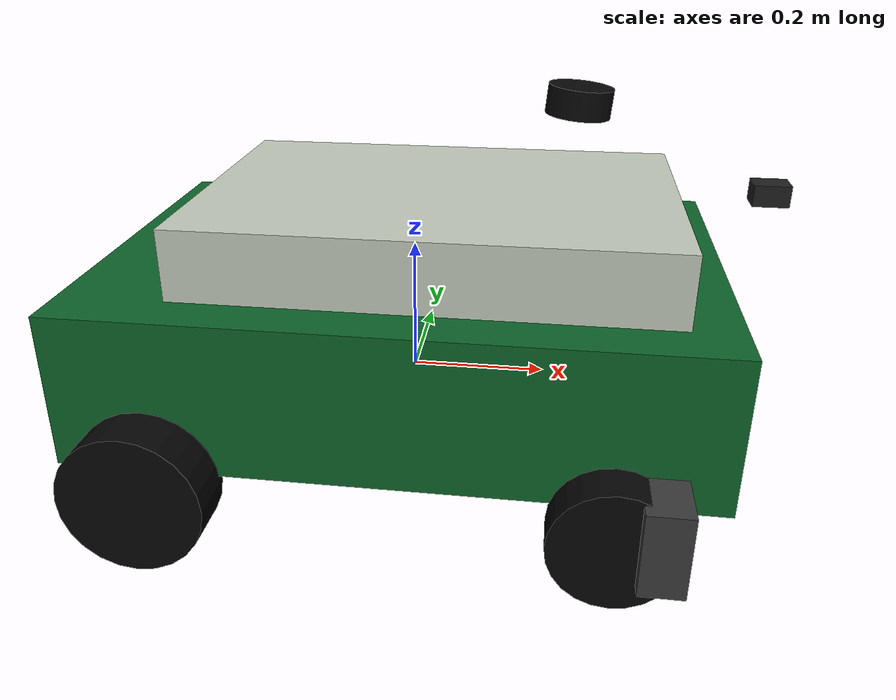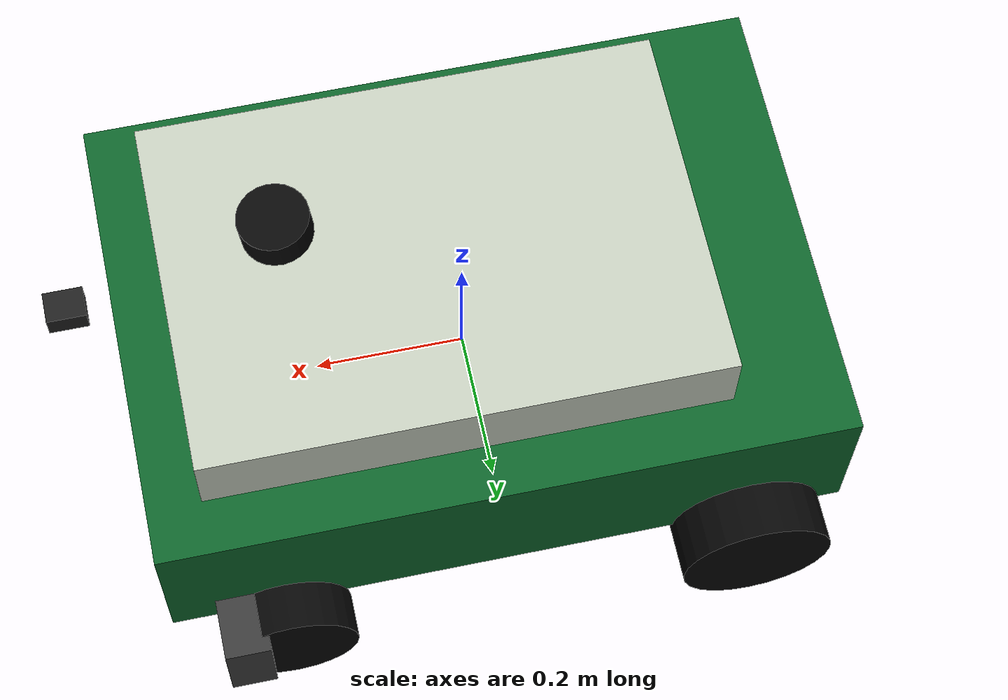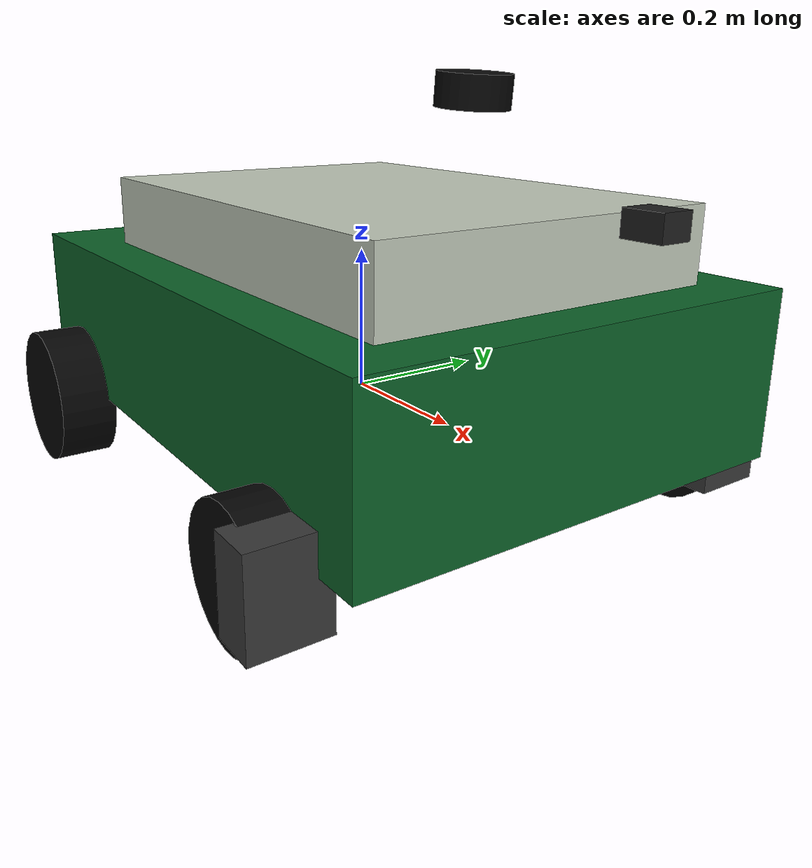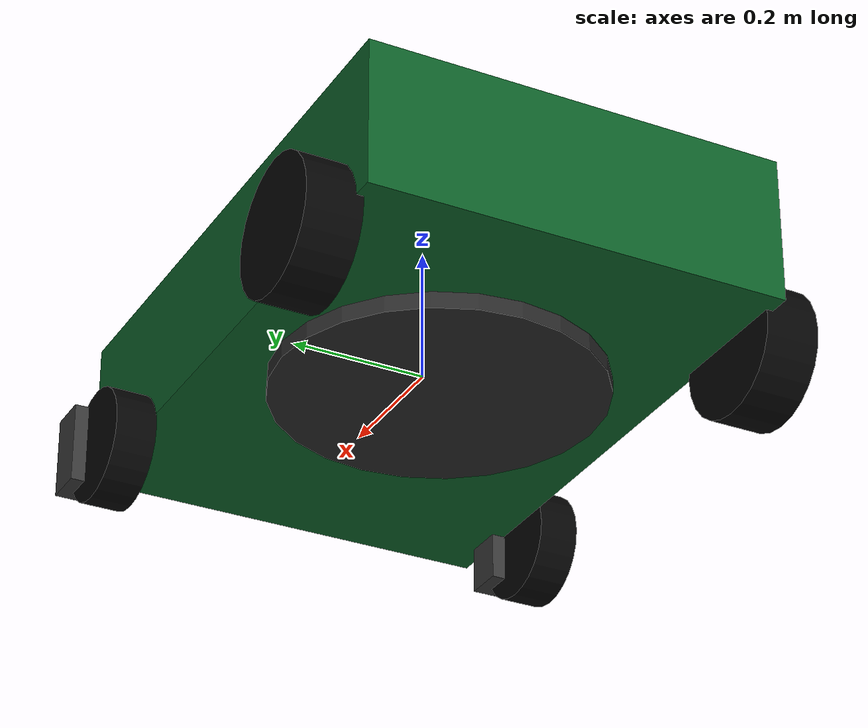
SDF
<?xml version="1.0"?>
<sdf version="1.6">
  <model name="mower_robot">
    <pose>0 0 0 0 0 0</pose>

    <link name="base_link">
      <inertial>
        <pose>-0.15 0 0 0 0 0</pose>
        <mass>20.0</mass>
        <inertia>
          <ixx>1.10</ixx>
          <ixy>0.0</ixy>
          <ixz>0.0</ixz>
          <iyy>1.65</iyy>
          <iyz>0.0</iyz>
          <izz>2.05</izz>
        </inertia>
      </inertial>
      <collision name="body_collision">
        <pose>0 0 0.08 0 0 0</pose>
        <geometry>
          <box>
            <size>0.9 0.62 0.22</size>
          </box>
        </geometry>
        <surface>
          <friction>
            <ode>
              <mu>0.8</mu>
              <mu2>0.8</mu2>
            </ode>
          </friction>
        </surface>
      </collision>
      <visual name="body_visual">
        <pose>0 0 0.08 0 0 0</pose>
        <geometry>
          <box>
            <size>0.9 0.62 0.22</size>
          </box>
        </geometry>
        <material>
          <ambient>0.05 0.28 0.12 1</ambient>
          <diffuse>0.05 0.38 0.16 1</diffuse>
          <specular>0.08 0.08 0.08 1</specular>
        </material>
      </visual>
      <visual name="top_cover">
        <pose>0.04 0 0.24 0 0 0</pose>
        <geometry>
          <box>
            <size>0.68 0.48 0.10</size>
          </box>
        </geometry>
        <material>
          <ambient>0.75 0.78 0.72 1</ambient>
          <diffuse>0.75 0.78 0.72 1</diffuse>
        </material>
      </visual>
      <visual name="cutting_disc">
        <pose>-0.05 0 -0.045 0 0 0</pose>
        <geometry>
          <cylinder>
            <radius>0.24</radius>
            <length>0.025</length>
          </cylinder>
        </geometry>
        <material>
          <ambient>0.14 0.14 0.14 1</ambient>
          <diffuse>0.16 0.16 0.16 1</diffuse>
        </material>
      </visual>
    </link>

    <link name="front_left_caster_yoke">
      <pose>0.36 0.34 -0.04 0 0 0</pose>
      <inertial>
        <mass>0.4</mass>
        <inertia>
          <ixx>0.001</ixx>
          <ixy>0.0</ixy>
          <ixz>0.0</ixz>
          <iyy>0.001</iyy>
          <iyz>0.0</iyz>
          <izz>0.001</izz>
        </inertia>
      </inertial>
      <visual name="fork_visual">
        <pose>0 0 0 0 0 0</pose>
        <geometry>
          <box>
            <size>0.06 0.10 0.12</size>
          </box>
        </geometry>
        <material>
          <ambient>0.18 0.18 0.18 1</ambient>
          <diffuse>0.22 0.22 0.22 1</diffuse>
        </material>
      </visual>
    </link>

    <link name="front_left_caster_wheel">
      <pose>0.30 0.34 -0.055 0 0 0</pose>
      <inertial>
        <mass>0.8</mass>
        <inertia>
          <ixx>0.004</ixx>
          <ixy>0.0</ixy>
          <ixz>0.0</ixz>
          <iyy>0.004</iyy>
          <iyz>0.0</iyz>
          <izz>0.007</izz>
        </inertia>
      </inertial>
      <collision name="collision">
        <pose>0 0 0 -1.5708 0 0</pose>
        <geometry>
          <cylinder>
            <radius>0.085</radius>
            <length>0.06</length>
          </cylinder>
        </geometry>
        <surface>
          <friction>
            <ode>
              <mu>1.0</mu>
              <mu2>1.0</mu2>
              <slip1>0.3</slip1>
              <slip2>0.3</slip2>
            </ode>
          </friction>
        </surface>
      </collision>
      <visual name="visual">
        <pose>0 0 0 -1.5708 0 0</pose>
        <geometry>
          <cylinder>
            <radius>0.085</radius>
            <length>0.06</length>
          </cylinder>
        </geometry>
        <material>
          <ambient>0.02 0.02 0.02 1</ambient>
          <diffuse>0.02 0.02 0.02 1</diffuse>
        </material>
      </visual>
    </link>

    <link name="front_right_caster_yoke">
      <pose>0.36 -0.34 -0.04 0 0 0</pose>
      <inertial>
        <mass>0.4</mass>
        <inertia>
          <ixx>0.001</ixx>
          <ixy>0.0</ixy>
          <ixz>0.0</ixz>
          <iyy>0.001</iyy>
          <iyz>0.0</iyz>
          <izz>0.001</izz>
        </inertia>
      </inertial>
      <visual name="fork_visual">
        <pose>0 0 0 0 0 0</pose>
        <geometry>
          <box>
            <size>0.06 0.10 0.12</size>
          </box>
        </geometry>
        <material>
          <ambient>0.18 0.18 0.18 1</ambient>
          <diffuse>0.22 0.22 0.22 1</diffuse>
        </material>
      </visual>
    </link>

    <link name="front_right_caster_wheel">
      <pose>0.30 -0.34 -0.055 0 0 0</pose>
      <inertial>
        <mass>0.8</mass>
        <inertia>
          <ixx>0.004</ixx>
          <ixy>0.0</ixy>
          <ixz>0.0</ixz>
          <iyy>0.004</iyy>
          <iyz>0.0</iyz>
          <izz>0.007</izz>
        </inertia>
      </inertial>
      <collision name="collision">
        <pose>0 0 0 -1.5708 0 0</pose>
        <geometry>
          <cylinder>
            <radius>0.085</radius>
            <length>0.06</length>
          </cylinder>
        </geometry>
        <surface>
          <friction>
            <ode>
              <mu>1.0</mu>
              <mu2>1.0</mu2>
              <slip1>0.3</slip1>
              <slip2>0.3</slip2>
            </ode>
          </friction>
        </surface>
      </collision>
      <visual name="visual">
        <pose>0 0 0 -1.5708 0 0</pose>
        <geometry>
          <cylinder>
            <radius>0.085</radius>
            <length>0.06</length>
          </cylinder>
        </geometry>
        <material>
          <ambient>0.02 0.02 0.02 1</ambient>
          <diffuse>0.02 0.02 0.02 1</diffuse>
        </material>
      </visual>
    </link>

    <link name="rear_left_wheel">
      <pose>-0.32 0.34 -0.04 -1.5708 0 0</pose>
      <inertial>
        <mass>1.2</mass>
        <inertia>
          <ixx>0.006</ixx>
          <ixy>0.0</ixy>
          <ixz>0.0</ixz>
          <iyy>0.006</iyy>
          <iyz>0.0</iyz>
          <izz>0.010</izz>
        </inertia>
      </inertial>
      <collision name="collision">
        <geometry>
          <cylinder>
            <radius>0.10</radius>
            <length>0.08</length>
          </cylinder>
        </geometry>
        <surface>
          <friction>
            <ode>
              <mu>1.0</mu>
              <mu2>1.0</mu2>
              <slip1>0.01</slip1>
              <slip2>0.01</slip2>
            </ode>
          </friction>
        </surface>
      </collision>
      <visual name="visual">
        <geometry>
          <cylinder>
            <radius>0.10</radius>
            <length>0.08</length>
          </cylinder>
        </geometry>
        <material>
          <ambient>0.02 0.02 0.02 1</ambient>
          <diffuse>0.02 0.02 0.02 1</diffuse>
        </material>
      </visual>
    </link>

    <link name="rear_right_wheel">
      <pose>-0.32 -0.34 -0.04 -1.5708 0 0</pose>
      <inertial>
        <mass>1.2</mass>
        <inertia>
          <ixx>0.006</ixx>
          <ixy>0.0</ixy>
          <ixz>0.0</ixz>
          <iyy>0.006</iyy>
          <iyz>0.0</iyz>
          <izz>0.010</izz>
        </inertia>
      </inertial>
      <collision name="collision">
        <geometry>
          <cylinder>
            <radius>0.10</radius>
            <length>0.08</length>
          </cylinder>
        </geometry>
        <surface>
          <friction>
            <ode>
              <mu>1.0</mu>
              <mu2>1.0</mu2>
              <slip1>0.01</slip1>
              <slip2>0.01</slip2>
            </ode>
          </friction>
        </surface>
      </collision>
      <visual name="visual">
        <geometry>
          <cylinder>
            <radius>0.10</radius>
            <length>0.08</length>
          </cylinder>
        </geometry>
        <material>
          <ambient>0.02 0.02 0.02 1</ambient>
          <diffuse>0.02 0.02 0.02 1</diffuse>
        </material>
      </visual>
    </link>

    <link name="camera_link">
      <pose>0.50 0.0 0.30 0 0 0</pose>
      <inertial>
        <mass>0.08</mass>
        <inertia>
          <ixx>0.0002</ixx>
          <ixy>0.0</ixy>
          <ixz>0.0</ixz>
          <iyy>0.0002</iyy>
          <iyz>0.0</iyz>
          <izz>0.0002</izz>
        </inertia>
      </inertial>
      <visual name="camera_housing">
        <geometry>
          <box>
            <size>0.05 0.04 0.03</size>
          </box>
        </geometry>
        <material>
          <ambient>0.10 0.10 0.10 1</ambient>
          <diffuse>0.12 0.12 0.12 1</diffuse>
        </material>
      </visual>
      <sensor type="ray" name="front_tof">
        <always_on>true</always_on>
        <update_rate>20</update_rate>
        <visualize>false</visualize>
        <ray>
          <scan>
            <horizontal>
              <samples>100</samples>
              <resolution>1.0</resolution>
              <min_angle>-0.785</min_angle>
              <max_angle>0.785</max_angle>
            </horizontal>
            <vertical>
              <samples>80</samples>
              <resolution>1.0</resolution>
              <min_angle>-0.611</min_angle>
              <max_angle>0.611</max_angle>
            </vertical>
          </scan>
          <range>
            <min>0.05</min>
            <max>2.5</max>
            <resolution>0.05</resolution>
          </range>
          <noise>
            <type>gaussian</type>
            <mean>0.0</mean>
            <stddev>0.01</stddev>
          </noise>
        </ray>
        <plugin name="front_tof_controller" filename="libgazebo_ros_ray_sensor.so">
          <ros>
            <namespace>/mower_tof</namespace>
            <remapping>~/out:=points</remapping>
          </ros>
          <output_type>sensor_msgs/PointCloud2</output_type>
          <frame_name>camera_link</frame_name>
        </plugin>
      </sensor>
      <sensor type="camera" name="front_camera">
        <always_on>false</always_on>
        <update_rate>15</update_rate>
        <visualize>false</visualize>
        <camera name="front_camera_sensor">
          <horizontal_fov>1.5708</horizontal_fov>
          <vertical_fov>1.22173</vertical_fov>
          <image>
            <width>640</width>
            <height>480</height>
            <format>R8G8B8</format>
          </image>
          <clip>
            <near>0.05</near>
            <far>30.0</far>
          </clip>
          <noise>
            <type>gaussian</type>
            <mean>0.0</mean>
            <stddev>0.002</stddev>
          </noise>
        </camera>
        <plugin name="front_camera_controller" filename="libgazebo_ros_camera.so">
          <ros>
            <namespace>/mower_camera</namespace>
            <remapping>image_raw:=image_raw</remapping>
            <remapping>camera_info:=camera_info</remapping>
          </ros>
          <frame_name>camera_link</frame_name>
        </plugin>
      </sensor>
    </link>

    <link name="lidar_link">
      <pose>0.23 0.0 0.42 0 0.0872665 0</pose>
      <inertial>
        <mass>0.18</mass>
        <inertia>
          <ixx>0.0003</ixx>
          <ixy>0.0</ixy>
          <ixz>0.0</ixz>
          <iyy>0.0003</iyy>
          <iyz>0.0</iyz>
          <izz>0.0003</izz>
        </inertia>
      </inertial>
      <visual name="lidar_housing">
        <geometry>
          <cylinder>
            <radius>0.045</radius>
            <length>0.04</length>
          </cylinder>
        </geometry>
        <material>
          <ambient>0.02 0.02 0.02 1</ambient>
          <diffuse>0.03 0.03 0.03 1</diffuse>
        </material>
      </visual>
      <sensor type="ray" name="front_lidar">
        <always_on>true</always_on>
        <update_rate>10</update_rate>
        <visualize>false</visualize>
        <ray>
          <scan>
            <horizontal>
              <samples>720</samples>
              <resolution>1.0</resolution>
              <min_angle>-3.14159</min_angle>
              <max_angle>3.14159</max_angle>
            </horizontal>
            <vertical>
              <samples>16</samples>
              <resolution>1.0</resolution>
              <min_angle>0.0</min_angle>
              <max_angle>0.3</max_angle>
            </vertical>
          </scan>
          <range>
            <min>0.10</min>
            <max>12.0</max>
            <resolution>0.01</resolution>
          </range>
          <noise>
            <type>gaussian</type>
            <mean>0.0</mean>
            <stddev>0.01</stddev>
          </noise>
        </ray>
        <plugin name="front_lidar_controller" filename="libgazebo_ros_ray_sensor.so">
          <ros>
            <namespace>/</namespace>
            <remapping>~/out:=sensor_lidar</remapping>
          </ros>
          <output_type>sensor_msgs/PointCloud2</output_type>
          <frame_name>lidar_link</frame_name>
        </plugin>
      </sensor>
    </link>

    <joint name="front_left_caster_swivel_joint" type="revolute">
      <parent>base_link</parent>
      <child>front_left_caster_yoke</child>
      <axis>
        <xyz>0 0 1</xyz>
        <limit>
          <lower>-1e16</lower>
          <upper>1e16</upper>
        </limit>
        <dynamics>
          <damping>0.005</damping>
          <friction>0.0</friction>
        </dynamics>
      </axis>
    </joint>

    <joint name="front_left_caster_wheel_joint" type="revolute">
      <parent>front_left_caster_yoke</parent>
      <child>front_left_caster_wheel</child>
      <axis>
        <xyz>0 1 0</xyz>
        <limit>
          <lower>-1e16</lower>
          <upper>1e16</upper>
        </limit>
        <dynamics>
          <damping>0.01</damping>
          <friction>0.0</friction>
        </dynamics>
      </axis>
    </joint>

    <joint name="front_right_caster_swivel_joint" type="revolute">
      <parent>base_link</parent>
      <child>front_right_caster_yoke</child>
      <axis>
        <xyz>0 0 1</xyz>
        <limit>
          <lower>-1e16</lower>
          <upper>1e16</upper>
        </limit>
        <dynamics>
          <damping>0.005</damping>
          <friction>0.0</friction>
        </dynamics>
      </axis>
    </joint>

    <joint name="front_right_caster_wheel_joint" type="revolute">
      <parent>front_right_caster_yoke</parent>
      <child>front_right_caster_wheel</child>
      <axis>
        <xyz>0 1 0</xyz>
        <limit>
          <lower>-1e16</lower>
          <upper>1e16</upper>
        </limit>
        <dynamics>
          <damping>0.01</damping>
          <friction>0.0</friction>
        </dynamics>
      </axis>
    </joint>

    <joint name="rear_left_wheel_joint" type="revolute">
      <parent>base_link</parent>
      <child>rear_left_wheel</child>
      <axis>
        <xyz>0 0 1</xyz>
        <limit>
          <lower>-1e16</lower>
          <upper>1e16</upper>
        </limit>
      </axis>
    </joint>
    <joint name="rear_right_wheel_joint" type="revolute">
      <parent>base_link</parent>
      <child>rear_right_wheel</child>
      <axis>
        <xyz>0 0 1</xyz>
        <limit>
          <lower>-1e16</lower>
          <upper>1e16</upper>
        </limit>
      </axis>
    </joint>

    <joint name="camera_joint" type="fixed">
      <parent>base_link</parent>
      <child>camera_link</child>
    </joint>

    <joint name="lidar_joint" type="fixed">
      <parent>base_link</parent>
      <child>lidar_link</child>
    </joint>

    <plugin name="diff_drive" filename="libgazebo_ros_diff_drive.so">
      <ros>
        <namespace>/</namespace>
        <remapping>cmd_vel:=cmd_vel</remapping>
        <remapping>odom:=odom</remapping>
      </ros>

      <left_joint>rear_left_wheel_joint</left_joint>
      <right_joint>rear_right_wheel_joint</right_joint>

      <wheel_separation>0.68</wheel_separation>
      <wheel_diameter>0.20</wheel_diameter>

      <max_wheel_torque>6.0</max_wheel_torque>
      <max_wheel_acceleration>2.0</max_wheel_acceleration>

      <publish_odom>true</publish_odom>
      <publish_odom_tf>true</publish_odom_tf>
      <publish_wheel_tf>true</publish_wheel_tf>

      <odometry_frame>odom</odometry_frame>
      <robot_base_frame>base_link</robot_base_frame>
    </plugin>
  </model>
</sdf>
